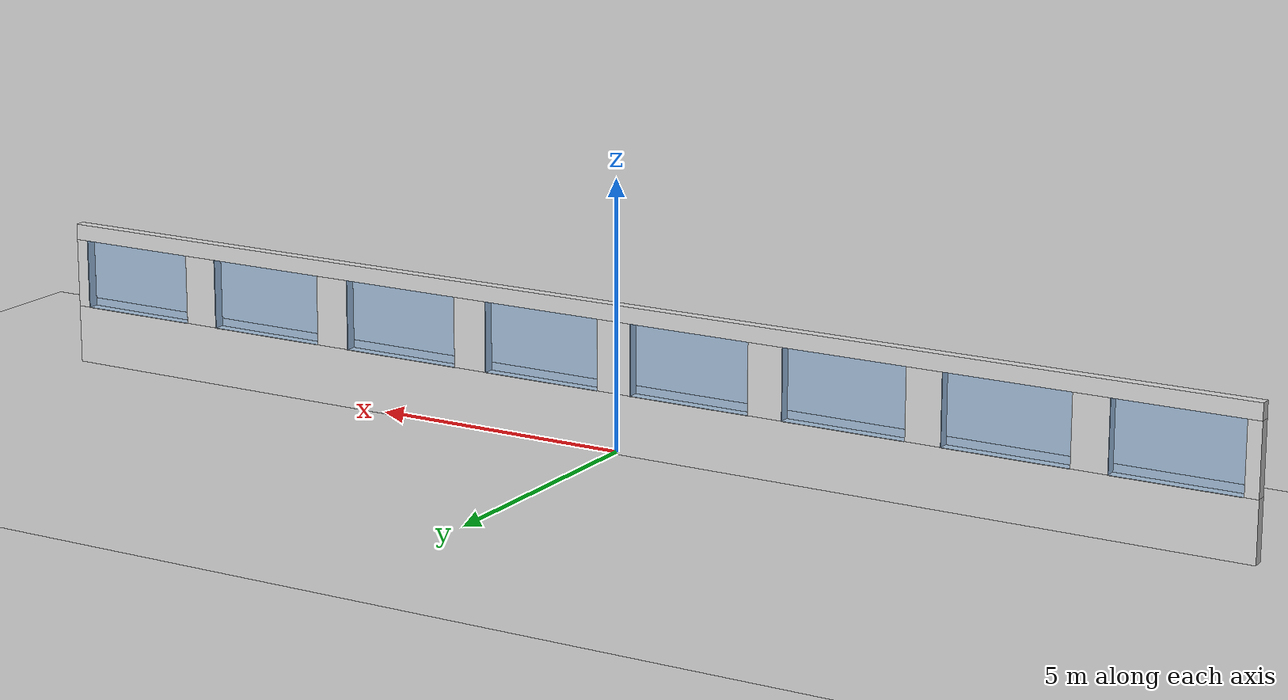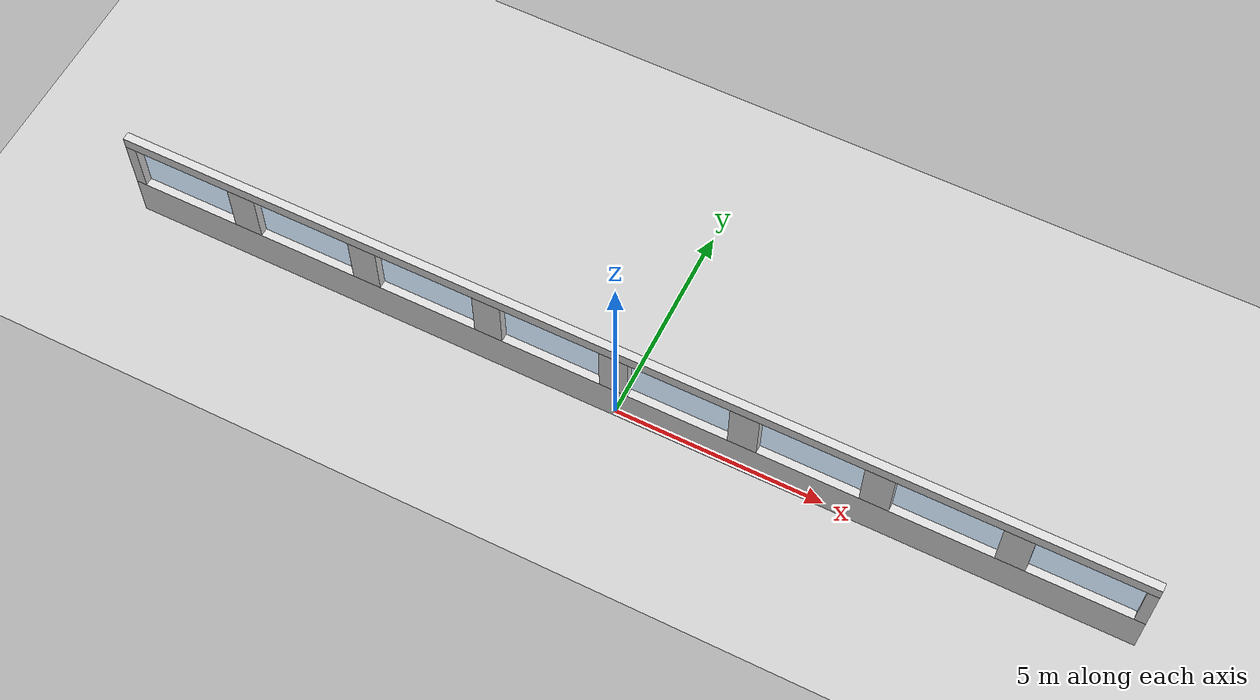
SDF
<?xml version="1.0" ?>
<sdf version="1.7">
  <world name="window_wall_world">

    <plugin
      filename="gz-sim-physics-system"
      name="gz::sim::systems::Physics">
    </plugin>
    <plugin
      filename="gz-sim-user-commands-system"
      name="gz::sim::systems::UserCommands">
    </plugin>
    <plugin
      filename="gz-sim-scene-broadcaster-system"
      name="gz::sim::systems::SceneBroadcaster">
    </plugin>

    <!-- Ground -->
    <model name="ground_plane">
      <static>true</static>
      <link name="link">
        <collision name="collision">
          <geometry>
            <plane>
              <normal>0 0 1</normal>
              <size>100 100</size>
            </plane>
          </geometry>
        </collision>
        <visual name="visual">
          <geometry>
            <plane>
              <normal>0 0 1</normal>
              <size>100 100</size>
            </plane>
          </geometry>
          <material>
            <ambient>0.8 0.8 0.8 1</ambient>
            <diffuse>0.8 0.8 0.8 1</diffuse>
          </material>
        </visual>
      </link>
    </model>

    <!-- Light -->
    <light name="sun" type="directional">
      <cast_shadows>true</cast_shadows>
      <pose>0 0 10 0 0 0</pose>
      <diffuse>0.8 0.8 0.8 1</diffuse>
      <specular>0.2 0.2 0.2 1</specular>
      <attenuation>
        <range>1000</range>
        <constant>0.9</constant>
        <linear>0.01</linear>
        <quadratic>0.001</quadratic>
      </attenuation>
      <direction>-0.5 0.1 -0.9</direction>
    </light>

    <!-- Wall with 8 windows -->
    <model name="wall_with_8_windows">
      <static>true</static>
      <pose>0 0 0 0 0 0</pose>

      <!-- Bottom strip under all windows -->
      <link name="bottom_strip">
        <pose>0 0 0.5588 0 0 0</pose>
        <collision name="collision">
          <geometry>
            <box>
              <size>24.2062 0.2 1.1176</size>
            </box>
          </geometry>
        </collision>
        <visual name="visual">
          <geometry>
            <box>
              <size>24.2062 0.2 1.1176</size>
            </box>
          </geometry>
          <material>
            <ambient>0.85 0.85 0.85 1</ambient>
            <diffuse>0.85 0.85 0.85 1</diffuse>
          </material>
        </visual>
      </link>

      <!-- Top strip above all windows -->
      <link name="top_strip">
        <pose>0 0 2.5908 0 0 0</pose>
        <collision name="collision">
          <geometry>
            <box>
              <size>24.2062 0.2 0.3048</size>
            </box>
          </geometry>
        </collision>
        <visual name="visual">
          <geometry>
            <box>
              <size>24.2062 0.2 0.3048</size>
            </box>
          </geometry>
          <material>
            <ambient>0.85 0.85 0.85 1</ambient>
            <diffuse>0.85 0.85 0.85 1</diffuse>
          </material>
        </visual>
      </link>

      <!-- Vertical wall sections -->
      <link name="section_1">
        <pose>-11.9761 0 1.778 0 0 0</pose>
        <collision name="collision">
          <geometry><box><size>0.254 0.2 1.3208</size></box>
        </geometry>
        </collision>
        <visual name="visual">
          <geometry><box><size>0.254 0.2 1.3208</size></box></geometry>
          <material>
            <ambient>0.85 0.85 0.85 1</ambient>
            <diffuse>0.85 0.85 0.85 1</diffuse>
          </material>
        </visual>
      </link>

      <link name="section_2">
        <pose>-9.1412786 0 1.778 0 0 0</pose>
        <collision name="collision">
          <geometry><box><size>0.6785429 0.2 1.3208</size></box></geometry>
        </collision>
        <visual name="visual">
          <geometry><box><size>0.6785429 0.2 1.3208</size></box></geometry>
          <material>
            <ambient>0.85 0.85 0.85 1</ambient>
            <diffuse>0.85 0.85 0.85 1</diffuse>
          </material>
        </visual>
      </link>

      <link name="section_3">
        <pose>-6.0941857 0 1.778 0 0 0</pose>
        <collision name="collision">
          <geometry><box><size>0.6785429 0.2 1.3208</size></box></geometry>
        </collision>
        <visual name="visual">
          <geometry><box><size>0.6785429 0.2 1.3208</size></box></geometry>
          <material>
            <ambient>0.85 0.85 0.85 1</ambient>
            <diffuse>0.85 0.85 0.85 1</diffuse>
          </material>
        </visual>
      </link>

      <link name="section_4">
        <pose>-3.0470929 0 1.778 0 0 0</pose>
        <collision name="collision">
          <geometry><box><size>0.6785429 0.2 1.3208</size></box></geometry>
        </collision>
        <visual name="visual">
          <geometry><box><size>0.6785429 0.2 1.3208</size></box></geometry>
          <material>
            <ambient>0.85 0.85 0.85 1</ambient>
            <diffuse>0.85 0.85 0.85 1</diffuse>
          </material>
        </visual>
      </link>

      <link name="section_5">
        <pose>0 0 1.778 0 0 0</pose>
        <collision name="collision">
          <geometry><box><size>0.6785429 0.2 1.3208</size></box></geometry>
        </collision>
        <visual name="visual">
          <geometry><box><size>0.6785429 0.2 1.3208</size></box></geometry>
          <material>
            <ambient>0.85 0.85 0.85 1</ambient>
            <diffuse>0.85 0.85 0.85 1</diffuse>
          </material>
        </visual>
      </link>

      <link name="section_6">
        <pose>3.0470929 0 1.778 0 0 0</pose>
        <collision name="collision">
          <geometry><box><size>0.6785429 0.2 1.3208</size></box></geometry>
        </collision>
        <visual name="visual">
          <geometry><box><size>0.6785429 0.2 1.3208</size></box></geometry>
          <material>
            <ambient>0.85 0.85 0.85 1</ambient>
            <diffuse>0.85 0.85 0.85 1</diffuse>
          </material>
        </visual>
      </link>

      <link name="section_7">
        <pose>6.0941857 0 1.778 0 0 0</pose>
        <collision name="collision">
          <geometry><box><size>0.6785429 0.2 1.3208</size></box></geometry>
        </collision>
        <visual name="visual">
          <geometry><box><size>0.6785429 0.2 1.3208</size></box></geometry>
          <material>
            <ambient>0.85 0.85 0.85 1</ambient>
            <diffuse>0.85 0.85 0.85 1</diffuse>
          </material>
        </visual>
      </link>

      <link name="section_8">
        <pose>9.1412786 0 1.778 0 0 0</pose>
        <collision name="collision">
          <geometry><box><size>0.6785429 0.2 1.3208</size></box></geometry>
        </collision>
        <visual name="visual">
          <geometry><box><size>0.6785429 0.2 1.3208</size></box></geometry>
          <material>
            <ambient>0.85 0.85 0.85 1</ambient>
            <diffuse>0.85 0.85 0.85 1</diffuse>
          </material>
        </visual>
      </link>

      <link name="section_9">
        <pose>11.9761 0 1.778 0 0 0</pose>
        <collision name="collision">
          <geometry><box><size>0.254 0.2 1.3208</size></box></geometry>
        </collision>
        <visual name="visual">
          <geometry><box><size>0.254 0.2 1.3208</size></box></geometry>
          <material>
            <ambient>0.85 0.85 0.85 1</ambient>
            <diffuse>0.85 0.85 0.85 1</diffuse>
          </material>
        </visual>
      </link>

      <!-- Glass panels -->
      <link name="window_1">
        <pose>-10.664825 0.11 1.778 0 0 0</pose>
        <visual name="visual">
          <geometry><box><size>2.36855 0.02 1.3208</size></box></geometry>
          <material>
            <ambient>0.3 0.6 0.9 0.35</ambient>
            <diffuse>0.3 0.6 0.9 0.35</diffuse>
          </material>
        </visual>
      </link>

      <link name="window_2">
        <pose>-7.6177321 0.11 1.778 0 0 0</pose>
        <visual name="visual">
          <geometry><box><size>2.36855 0.02 1.3208</size></box></geometry>
          <material>
            <ambient>0.3 0.6 0.9 0.35</ambient>
            <diffuse>0.3 0.6 0.9 0.35</diffuse>
          </material>
        </visual>
      </link>

      <link name="window_3">
        <pose>-4.5706393 0.11 1.778 0 0 0</pose>
        <visual name="visual">
          <geometry><box><size>2.36855 0.02 1.3208</size></box></geometry>
          <material>
            <ambient>0.3 0.6 0.9 0.35</ambient>
            <diffuse>0.3 0.6 0.9 0.35</diffuse>
          </material>
        </visual>
      </link>

      <link name="window_4">
        <pose>-1.5235464 0.11 1.778 0 0 0</pose>
        <visual name="visual">
          <geometry><box><size>2.36855 0.02 1.3208</size></box></geometry>
          <material>
            <ambient>0.3 0.6 0.9 0.35</ambient>
            <diffuse>0.3 0.6 0.9 0.35</diffuse>
          </material>
        </visual>
      </link>

      <link name="window_5">
        <pose>1.5235464 0.11 1.778 0 0 0</pose>
        <visual name="visual">
          <geometry><box><size>2.36855 0.02 1.3208</size></box></geometry>
          <material>
            <ambient>0.3 0.6 0.9 0.35</ambient>
            <diffuse>0.3 0.6 0.9 0.35</diffuse>
          </material>
        </visual>
      </link>

      <link name="window_6">
        <pose>4.5706393 0.11 1.778 0 0 0</pose>
        <visual name="visual">
          <geometry><box><size>2.36855 0.02 1.3208</size></box></geometry>
          <material>
            <ambient>0.3 0.6 0.9 0.35</ambient>
            <diffuse>0.3 0.6 0.9 0.35</diffuse>
          </material>
        </visual>
      </link>

      <link name="window_7">
        <pose>7.6177321 0.11 1.778 0 0 0</pose>
        <visual name="visual">
          <geometry><box><size>2.36855 0.02 1.3208</size></box></geometry>
          <material>
            <ambient>0.3 0.6 0.9 0.35</ambient>
            <diffuse>0.3 0.6 0.9 0.35</diffuse>
          </material>
        </visual>
      </link>

      <link name="window_8">
        <pose>10.664825 0.11 1.778 0 0 0</pose>
        <visual name="visual">
          <geometry><box><size>2.36855 0.02 1.3208</size></box></geometry>
          <material>
            <ambient>0.3 0.6 0.9 0.35</ambient>
            <diffuse>0.3 0.6 0.9 0.35</diffuse>
          </material>
        </visual>
      </link>

    </model>
  </world>
</sdf>
